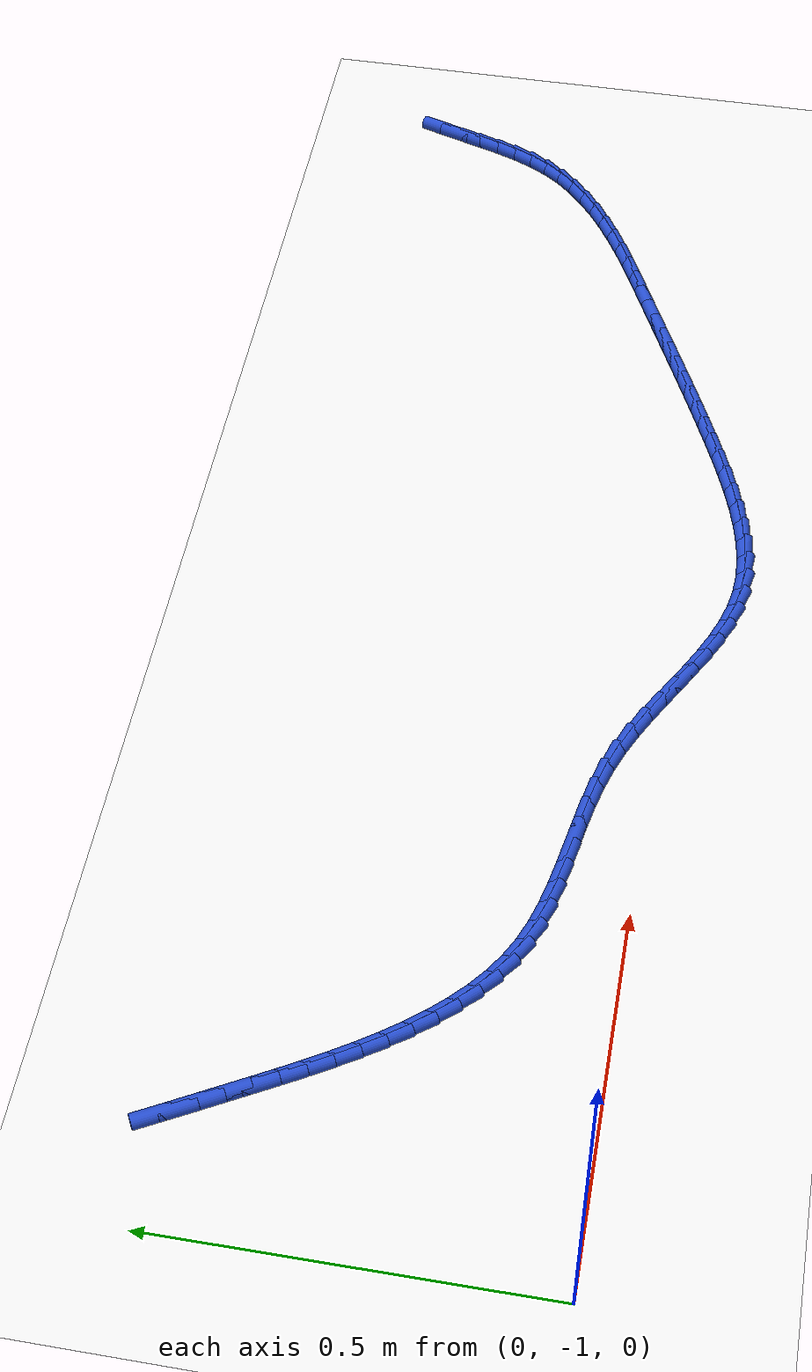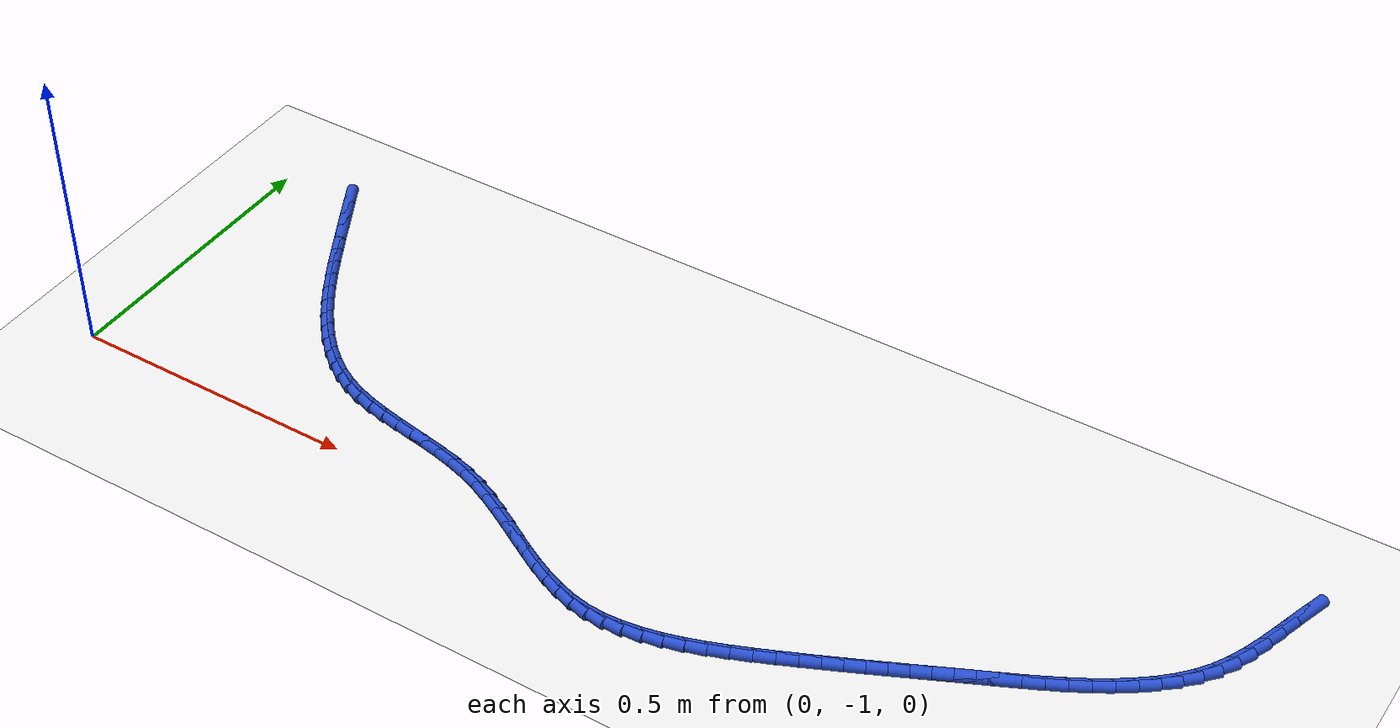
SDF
<sdf version="1.6">
 <world name="default">
  <model name="ground_plane">
   <static>1</static>
   <link name="link">
    <collision name="collision">
     <geometry><plane><normal>0 0 1</normal><size>100 100</size></plane></geometry>
     <surface><friction><ode><mu>100</mu><mu2>50</mu2></ode></friction></surface>
    </collision>
    <visual name="visual">
     <cast_shadows>0</cast_shadows>
     <geometry><plane><normal>0 0 1</normal><size>100 100</size></plane></geometry>
     <material>
      <script><uri>file://media/materials/scripts/gazebo.material</uri><name>Gazebo/WhiteGlow</name></script>
     </material>
    </visual>
   </link>
  </model>
  <model name="line">
   <link name="link_123">
    <pose>1.9035971837021775 -0.5317631812124626 0.01 0 1.57 1.2574699177674902</pose>
    <collision name="collision">
     <geometry><cylinder><radius>0.01</radius><length>0.08</length></cylinder></geometry>
    </collision>
    <visual name="visual">
     <material>
      <script><name>Gazebo/Blue</name><uri>file://media/materials/scripts/gazebo.material</uri></script>
     </material>
     <geometry><cylinder><radius>0.01</radius><length>0.08</length></cylinder></geometry>
    </visual>
   </link>
   <link name="link_124">
    <pose>1.8936572773726028 -0.5624419838178387 0.01 0 1.57 1.2650999844335613</pose>
    <collision name="collision">
     <geometry><cylinder><radius>0.01</radius><length>0.08</length></cylinder></geometry>
    </collision>
    <visual name="visual">
     <material>
      <script><name>Gazebo/Blue</name><uri>file://media/materials/scripts/gazebo.material</uri></script>
     </material>
     <geometry><cylinder><radius>0.01</radius><length>0.08</length></cylinder></geometry>
    </visual>
   </link>
   <link name="link_125">
    <pose>1.8840404693398973 -0.5929145780243941 0.01 0 1.57 1.249362293330336</pose>
    <collision name="collision">
     <geometry><cylinder><radius>0.01</radius><length>0.08</length></cylinder></geometry>
    </collision>
    <visual name="visual">
     <material>
      <script><name>Gazebo/Blue</name><uri>file://media/materials/scripts/gazebo.material</uri></script>
     </material>
     <geometry><cylinder><radius>0.01</radius><length>0.08</length></cylinder></geometry>
    </visual>
   </link>
   <link name="link_126">
    <pose>1.8740819137878313 -0.6228217955540367 0.01 0 1.57 1.2091053496623614</pose>
    <collision name="collision">
     <geometry><cylinder><radius>0.01</radius><length>0.08</length></cylinder></geometry>
    </collision>
    <visual name="visual">
     <material>
      <script><name>Gazebo/Blue</name><uri>file://media/materials/scripts/gazebo.material</uri></script>
     </material>
     <geometry><cylinder><radius>0.01</radius><length>0.08</length></cylinder></geometry>
    </visual>
   </link>
   <link name="link_127">
    <pose>1.8631167649001754 -0.6518044681286776 0.01 0 1.57 1.142788809898979</pose>
    <collision name="collision">
     <geometry><cylinder><radius>0.01</radius><length>0.08</length></cylinder></geometry>
    </collision>
    <visual name="visual">
     <material>
      <script><name>Gazebo/Blue</name><uri>file://media/materials/scripts/gazebo.material</uri></script>
     </material>
     <geometry><cylinder><radius>0.01</radius><length>0.08</length></cylinder></geometry>
    </visual>
   </link>
   <link name="link_128">
    <pose>1.8504801768606975 -0.6795034274702267 0.01 0 1.57 1.0492345519311874</pose>
    <collision name="collision">
     <geometry><cylinder><radius>0.01</radius><length>0.08</length></cylinder></geometry>
    </collision>
    <visual name="visual">
     <material>
      <script><name>Gazebo/Blue</name><uri>file://media/materials/scripts/gazebo.material</uri></script>
     </material>
     <geometry><cylinder><radius>0.01</radius><length>0.08</length></cylinder></geometry>
    </visual>
   </link>
   <link name="link_129">
    <pose>1.8355073611166977 -0.7055595357457469 0.01 0 1.57 0.9366217355337603</pose>
    <collision name="collision">
     <geometry><cylinder><radius>0.01</radius><length>0.08</length></cylinder></geometry>
    </collision>
    <visual name="visual">
     <material>
      <script><name>Gazebo/Blue</name><uri>file://media/materials/scripts/gazebo.material</uri></script>
     </material>
     <geometry><cylinder><radius>0.01</radius><length>0.08</length></cylinder></geometry>
    </visual>
   </link>
   <link name="link_130">
    <pose>1.817735785951005 -0.7297211884959385 0.01 0 1.57 0.8318644804979223</pose>
    <collision name="collision">
     <geometry><cylinder><radius>0.01</radius><length>0.08</length></cylinder></geometry>
    </collision>
    <visual name="visual">
     <material>
      <script><name>Gazebo/Blue</name><uri>file://media/materials/scripts/gazebo.material</uri></script>
     </material>
     <geometry><cylinder><radius>0.01</radius><length>0.08</length></cylinder></geometry>
    </visual>
   </link>
   <link name="link_131">
    <pose>1.79735889259243 -0.7520855407173171 0.01 0 1.57 0.741149634782639</pose>
    <collision name="collision">
     <geometry><cylinder><radius>0.01</radius><length>0.08</length></cylinder></geometry>
    </collision>
    <visual name="visual">
     <material>
      <script><name>Gazebo/Blue</name><uri>file://media/materials/scripts/gazebo.material</uri></script>
     </material>
     <geometry><cylinder><radius>0.01</radius><length>0.08</length></cylinder></geometry>
    </visual>
   </link>
   <link name="link_132">
    <pose>1.774702873210208 -0.7728203267588344 0.01 0 1.57 0.6643931690091314</pose>
    <collision name="collision">
     <geometry><cylinder><radius>0.01</radius><length>0.08</length></cylinder></geometry>
    </collision>
    <visual name="visual">
     <material>
      <script><name>Gazebo/Blue</name><uri>file://media/materials/scripts/gazebo.material</uri></script>
     </material>
     <geometry><cylinder><radius>0.01</radius><length>0.08</length></cylinder></geometry>
    </visual>
   </link>
   <link name="link_133">
    <pose>1.7500939199735759 -0.7920932809694408 0.01 0 1.57 0.6007798519271356</pose>
    <collision name="collision">
     <geometry><cylinder><radius>0.01</radius><length>0.08</length></cylinder></geometry>
    </collision>
    <visual name="visual">
     <material>
      <script><name>Gazebo/Blue</name><uri>file://media/materials/scripts/gazebo.material</uri></script>
     </material>
     <geometry><cylinder><radius>0.01</radius><length>0.08</length></cylinder></geometry>
    </visual>
   </link>
   <link name="link_134">
    <pose>1.7238582250517693 -0.8100721376980875 0.01 0 1.57 0.5492045805692501</pose>
    <collision name="collision">
     <geometry><cylinder><radius>0.01</radius><length>0.08</length></cylinder></geometry>
    </collision>
    <visual name="visual">
     <material>
      <script><name>Gazebo/Blue</name><uri>file://media/materials/scripts/gazebo.material</uri></script>
     </material>
     <geometry><cylinder><radius>0.01</radius><length>0.08</length></cylinder></geometry>
    </visual>
   </link>
   <link name="link_135">
    <pose>1.696321980614024 -0.8269246312937255 0.01 0 1.57 0.5085618356266397</pose>
    <collision name="collision">
     <geometry><cylinder><radius>0.01</radius><length>0.08</length></cylinder></geometry>
    </collision>
    <visual name="visual">
     <material>
      <script><name>Gazebo/Blue</name><uri>file://media/materials/scripts/gazebo.material</uri></script>
     </material>
     <geometry><cylinder><radius>0.01</radius><length>0.08</length></cylinder></geometry>
    </visual>
   </link>
   <link name="link_136">
    <pose>1.6678113788295754 -0.8428184961053059 0.01 0 1.57 0.47790933061135116</pose>
    <collision name="collision">
     <geometry><cylinder><radius>0.01</radius><length>0.08</length></cylinder></geometry>
    </collision>
    <visual name="visual">
     <material>
      <script><name>Gazebo/Blue</name><uri>file://media/materials/scripts/gazebo.material</uri></script>
     </material>
     <geometry><cylinder><radius>0.01</radius><length>0.08</length></cylinder></geometry>
    </visual>
   </link>
   <link name="link_137">
    <pose>1.6386526118676594 -0.8579214664817798 0.01 0 1.57 0.45655200049323724</pose>
    <collision name="collision">
     <geometry><cylinder><radius>0.01</radius><length>0.08</length></cylinder></geometry>
    </collision>
    <visual name="visual">
     <material>
      <script><name>Gazebo/Blue</name><uri>file://media/materials/scripts/gazebo.material</uri></script>
     </material>
     <geometry><cylinder><radius>0.01</radius><length>0.08</length></cylinder></geometry>
    </visual>
   </link>
   <link name="link_138">
    <pose>1.6091718718975119 -0.8724012767720983 0.01 0 1.57 0.44408581219840354</pose>
    <collision name="collision">
     <geometry><cylinder><radius>0.01</radius><length>0.08</length></cylinder></geometry>
    </collision>
    <visual name="visual">
     <material>
      <script><name>Gazebo/Blue</name><uri>file://media/materials/scripts/gazebo.material</uri></script>
     </material>
     <geometry><cylinder><radius>0.01</radius><length>0.08</length></cylinder></geometry>
    </visual>
   </link>
   <link name="link_139">
    <pose>1.5796953510883691 -0.8864256613252119 0.01 0 1.57 0.4403363741267102</pose>
    <collision name="collision">
     <geometry><cylinder><radius>0.01</radius><length>0.08</length></cylinder></geometry>
    </collision>
    <visual name="visual">
     <material>
      <script><name>Gazebo/Blue</name><uri>file://media/materials/scripts/gazebo.material</uri></script>
     </material>
     <geometry><cylinder><radius>0.01</radius><length>0.08</length></cylinder></geometry>
    </visual>
   </link>
   <link name="link_140">
    <pose>1.5505450826205665 -0.9001610205906814 0.01 0 1.57 0.44144242563334807</pose>
    <collision name="collision">
     <geometry><cylinder><radius>0.01</radius><length>0.08</length></cylinder></geometry>
    </collision>
    <visual name="visual">
     <material>
      <script><name>Gazebo/Blue</name><uri>file://media/materials/scripts/gazebo.material</uri></script>
     </material>
     <geometry><cylinder><radius>0.01</radius><length>0.08</length></cylinder></geometry>
    </visual>
   </link>
   <link name="link_141">
    <pose>1.5218611972191114 -0.9137154140173686 0.01 0 1.57 0.44191568588990127</pose>
    <collision name="collision">
     <geometry><cylinder><radius>0.01</radius><length>0.08</length></cylinder></geometry>
    </collision>
    <visual name="visual">
     <material>
      <script><name>Gazebo/Blue</name><uri>file://media/materials/scripts/gazebo.material</uri></script>
     </material>
     <geometry><cylinder><radius>0.01</radius><length>0.08</length></cylinder></geometry>
    </visual>
   </link>
   <link name="link_142">
    <pose>1.4935351144812237 -0.9271171327186635 0.01 0 1.57 0.44131330623203374</pose>
    <collision name="collision">
     <geometry><cylinder><radius>0.01</radius><length>0.08</length></cylinder></geometry>
    </collision>
    <visual name="visual">
     <material>
      <script><name>Gazebo/Blue</name><uri>file://media/materials/scripts/gazebo.material</uri></script>
     </material>
     <geometry><cylinder><radius>0.01</radius><length>0.08</length></cylinder></geometry>
    </visual>
   </link>
   <link name="link_143">
    <pose>1.465440322047246 -0.9403887165479923 0.01 0 1.57 0.439614917122317</pose>
    <collision name="collision">
     <geometry><cylinder><radius>0.01</radius><length>0.08</length></cylinder></geometry>
    </collision>
    <visual name="visual">
     <material>
      <script><name>Gazebo/Blue</name><uri>file://media/materials/scripts/gazebo.material</uri></script>
     </material>
     <geometry><cylinder><radius>0.01</radius><length>0.08</length></cylinder></geometry>
    </visual>
   </link>
   <link name="link_144">
    <pose>1.437450307557522 -0.9535527053587806 0.01 0 1.57 0.43682601974487045</pose>
    <collision name="collision">
     <geometry><cylinder><radius>0.01</radius><length>0.08</length></cylinder></geometry>
    </collision>
    <visual name="visual">
     <material>
      <script><name>Gazebo/Blue</name><uri>file://media/materials/scripts/gazebo.material</uri></script>
     </material>
     <geometry><cylinder><radius>0.01</radius><length>0.08</length></cylinder></geometry>
    </visual>
   </link>
   <link name="link_145">
    <pose>1.4094385586523945 -0.9666316390044549 0.01 0 1.57 0.4329784116088132</pose>
    <collision name="collision">
     <geometry><cylinder><radius>0.01</radius><length>0.08</length></cylinder></geometry>
    </collision>
    <visual name="visual">
     <material>
      <script><name>Gazebo/Blue</name><uri>file://media/materials/scripts/gazebo.material</uri></script>
     </material>
     <geometry><cylinder><radius>0.01</radius><length>0.08</length></cylinder></geometry>
    </visual>
   </link>
   <link name="link_146">
    <pose>1.3812785629722086 -0.9796480573384408 0.01 0 1.57 0.4281290827816842</pose>
    <collision name="collision">
     <geometry><cylinder><radius>0.01</radius><length>0.08</length></cylinder></geometry>
    </collision>
    <visual name="visual">
     <material>
      <script><name>Gazebo/Blue</name><uri>file://media/materials/scripts/gazebo.material</uri></script>
     </material>
     <geometry><cylinder><radius>0.01</radius><length>0.08</length></cylinder></geometry>
    </visual>
   </link>
   <link name="link_147">
    <pose>1.3528438081573069 -0.9926245002141648 0.01 0 1.57 0.4223576536189473</pose>
    <collision name="collision">
     <geometry><cylinder><radius>0.01</radius><length>0.08</length></cylinder></geometry>
    </collision>
    <visual name="visual">
     <material>
      <script><name>Gazebo/Blue</name><uri>file://media/materials/scripts/gazebo.material</uri></script>
     </material>
     <geometry><cylinder><radius>0.01</radius><length>0.08</length></cylinder></geometry>
    </visual>
   </link>
   <link name="link_148">
    <pose>1.3240077818480331 -1.0055835074850528 0.01 0 1.57 0.4157483393973781</pose>
    <collision name="collision">
     <geometry><cylinder><radius>0.01</radius><length>0.08</length></cylinder></geometry>
    </collision>
    <visual name="visual">
     <material>
      <script><name>Gazebo/Blue</name><uri>file://media/materials/scripts/gazebo.material</uri></script>
     </material>
     <geometry><cylinder><radius>0.01</radius><length>0.08</length></cylinder></geometry>
    </visual>
   </link>
   <link name="link_149">
    <pose>1.2946444045850745 -1.0185469283003201 0.01 0 1.57 0.4058955271044102</pose>
    <collision name="collision">
     <geometry><cylinder><radius>0.01</radius><length>0.08</length></cylinder></geometry>
    </collision>
    <visual name="visual">
     <material>
      <script><name>Gazebo/Blue</name><uri>file://media/materials/scripts/gazebo.material</uri></script>
     </material>
     <geometry><cylinder><radius>0.01</radius><length>0.08</length></cylinder></geometry>
    </visual>
   </link>
   <link name="link_150">
    <pose>1.2647045067808875 -1.0314139000279372 0.01 0 1.57 0.3874734914682873</pose>
    <collision name="collision">
     <geometry><cylinder><radius>0.01</radius><length>0.08</length></cylinder></geometry>
    </collision>
    <visual name="visual">
     <material>
      <script><name>Gazebo/Blue</name><uri>file://media/materials/scripts/gazebo.material</uri></script>
     </material>
     <geometry><cylinder><radius>0.01</radius><length>0.08</length></cylinder></geometry>
    </visual>
   </link>
   <link name="link_151">
    <pose>1.2343037328808113 -1.0438205947872865 0.01 0 1.57 0.3595368249839444</pose>
    <collision name="collision">
     <geometry><cylinder><radius>0.01</radius><length>0.08</length></cylinder></geometry>
    </collision>
    <visual name="visual">
     <material>
      <script><name>Gazebo/Blue</name><uri>file://media/materials/scripts/gazebo.material</uri></script>
     </material>
     <geometry><cylinder><radius>0.01</radius><length>0.08</length></cylinder></geometry>
    </visual>
   </link>
   <link name="link_152">
    <pose>1.2035790131520843 -1.0553692225930114 0.01 0 1.57 0.321426150387255</pose>
    <collision name="collision">
     <geometry><cylinder><radius>0.01</radius><length>0.08</length></cylinder></geometry>
    </collision>
    <visual name="visual">
     <material>
      <script><name>Gazebo/Blue</name><uri>file://media/materials/scripts/gazebo.material</uri></script>
     </material>
     <geometry><cylinder><radius>0.01</radius><length>0.08</length></cylinder></geometry>
    </visual>
   </link>
   <link name="link_153">
    <pose>1.1726672778619427 -1.0656619934597569 0.01 0 1.57 0.2721044157323733</pose>
    <collision name="collision">
     <geometry><cylinder><radius>0.01</radius><length>0.08</length></cylinder></geometry>
    </collision>
    <visual name="visual">
     <material>
      <script><name>Gazebo/Blue</name><uri>file://media/materials/scripts/gazebo.material</uri></script>
     </material>
     <geometry><cylinder><radius>0.01</radius><length>0.08</length></cylinder></geometry>
    </visual>
   </link>
   <link name="link_154">
    <pose>1.141705457277623 -1.0743011174021673 0.01 0 1.57 0.21021435735303312</pose>
    <collision name="collision">
     <geometry><cylinder><radius>0.01</radius><length>0.08</length></cylinder></geometry>
    </collision>
    <visual name="visual">
     <material>
      <script><name>Gazebo/Blue</name><uri>file://media/materials/scripts/gazebo.material</uri></script>
     </material>
     <geometry><cylinder><radius>0.01</radius><length>0.08</length></cylinder></geometry>
    </visual>
   </link>
   <link name="link_155">
    <pose>1.110830481666363 -1.0808888044348872 0.01 0 1.57 0.13420628929436992</pose>
    <collision name="collision">
     <geometry><cylinder><radius>0.01</radius><length>0.08</length></cylinder></geometry>
    </collision>
    <visual name="visual">
     <material>
      <script><name>Gazebo/Blue</name><uri>file://media/materials/scripts/gazebo.material</uri></script>
     </material>
     <geometry><cylinder><radius>0.01</radius><length>0.08</length></cylinder></geometry>
    </visual>
   </link>
   <link name="link_156">
    <pose>1.0801792812953992 -1.0850272645725616 0.01 0 1.57 0.04260945889656731</pose>
    <collision name="collision">
     <geometry><cylinder><radius>0.01</radius><length>0.08</length></cylinder></geometry>
    </collision>
    <visual name="visual">
     <material>
      <script><name>Gazebo/Blue</name><uri>file://media/materials/scripts/gazebo.material</uri></script>
     </material>
     <geometry><cylinder><radius>0.01</radius><length>0.08</length></cylinder></geometry>
    </visual>
   </link>
   <link name="link_157">
    <pose>1.049888786431968 -1.0863187078298346 0.01 0 1.57 -0.06547111826428142</pose>
    <collision name="collision">
     <geometry><cylinder><radius>0.01</radius><length>0.08</length></cylinder></geometry>
    </collision>
    <visual name="visual">
     <material>
      <script><name>Gazebo/Blue</name><uri>file://media/materials/scripts/gazebo.material</uri></script>
     </material>
     <geometry><cylinder><radius>0.01</radius><length>0.08</length></cylinder></geometry>
    </visual>
   </link>
   <link name="link_158">
    <pose>1.020095927343308 -1.084365344221351 0.01 0 1.57 -0.1856577948138502</pose>
    <collision name="collision">
     <geometry><cylinder><radius>0.01</radius><length>0.08</length></cylinder></geometry>
    </collision>
    <visual name="visual">
     <material>
      <script><name>Gazebo/Blue</name><uri>file://media/materials/scripts/gazebo.material</uri></script>
     </material>
     <geometry><cylinder><radius>0.01</radius><length>0.08</length></cylinder></geometry>
    </visual>
   </link>
   <link name="link_159">
    <pose>0.9909056694233843 -1.078882807898008 0.01 0 1.57 -0.2934075538585413</pose>
    <collision name="collision">
     <geometry><cylinder><radius>0.01</radius><length>0.08</length></cylinder></geometry>
    </collision>
    <visual name="visual">
     <material>
      <script><name>Gazebo/Blue</name><uri>file://media/materials/scripts/gazebo.material</uri></script>
     </material>
     <geometry><cylinder><radius>0.01</radius><length>0.08</length></cylinder></geometry>
    </visual>
   </link>
   <link name="link_160">
    <pose>0.962243608226135 -1.0702232088385004 0.01 0 1.57 -0.37911435638638535</pose>
    <collision name="collision">
     <geometry><cylinder><radius>0.01</radius><length>0.08</length></cylinder></geometry>
    </collision>
    <visual name="visual">
     <material>
      <script><name>Gazebo/Blue</name><uri>file://media/materials/scripts/gazebo.material</uri></script>
     </material>
     <geometry><cylinder><radius>0.01</radius><length>0.08</length></cylinder></geometry>
    </visual>
   </link>
   <link name="link_161">
    <pose>0.9339728154965276 -1.0589605164660314 0.01 0 1.57 -0.44297478747484353</pose>
    <collision name="collision">
     <geometry><cylinder><radius>0.01</radius><length>0.08</length></cylinder></geometry>
    </collision>
    <visual name="visual">
     <material>
      <script><name>Gazebo/Blue</name><uri>file://media/materials/scripts/gazebo.material</uri></script>
     </material>
     <geometry><cylinder><radius>0.01</radius><length>0.08</length></cylinder></geometry>
    </visual>
   </link>
   <link name="link_162">
    <pose>0.9059562987892312 -1.0456689279766171 0.01 0 1.57 -0.48623002297974066</pose>
    <collision name="collision">
     <geometry><cylinder><radius>0.01</radius><length>0.08</length></cylinder></geometry>
    </collision>
    <visual name="visual">
     <material>
      <script><name>Gazebo/Blue</name><uri>file://media/materials/scripts/gazebo.material</uri></script>
     </material>
     <geometry><cylinder><radius>0.01</radius><length>0.08</length></cylinder></geometry>
    </visual>
   </link>
   <link name="link_163">
    <pose>0.8780570656589163 -1.0309226405662744 0.01 0 1.57 -0.5102751123221384</pose>
    <collision name="collision">
     <geometry><cylinder><radius>0.01</radius><length>0.08</length></cylinder></geometry>
    </collision>
    <visual name="visual">
     <material>
      <script><name>Gazebo/Blue</name><uri>file://media/materials/scripts/gazebo.material</uri></script>
     </material>
     <geometry><cylinder><radius>0.01</radius><length>0.08</length></cylinder></geometry>
    </visual>
   </link>
   <link name="link_164">
    <pose>0.850138123660252 -1.0152958514310182 0.01 0 1.57 -0.5161840386938299</pose>
    <collision name="collision">
     <geometry><cylinder><radius>0.01</radius><length>0.08</length></cylinder></geometry>
    </collision>
    <visual name="visual">
     <material>
      <script><name>Gazebo/Blue</name><uri>file://media/materials/scripts/gazebo.material</uri></script>
     </material>
     <geometry><cylinder><radius>0.01</radius><length>0.08</length></cylinder></geometry>
    </visual>
   </link>
   <link name="link_165">
    <pose>0.8220624803479096 -0.9993627577668664 0.01 0 1.57 -0.5045213295678022</pose>
    <collision name="collision">
     <geometry><cylinder><radius>0.01</radius><length>0.08</length></cylinder></geometry>
    </collision>
    <visual name="visual">
     <material>
      <script><name>Gazebo/Blue</name><uri>file://media/materials/scripts/gazebo.material</uri></script>
     </material>
     <geometry><cylinder><radius>0.01</radius><length>0.08</length></cylinder></geometry>
    </visual>
   </link>
   <link name="link_166">
    <pose>0.7936931432765582 -0.983697556769835 0.01 0 1.57 -0.47533117148482873</pose>
    <collision name="collision">
     <geometry><cylinder><radius>0.01</radius><length>0.08</length></cylinder></geometry>
    </collision>
    <visual name="visual">
     <material>
      <script><name>Gazebo/Blue</name><uri>file://media/materials/scripts/gazebo.material</uri></script>
     </material>
     <geometry><cylinder><radius>0.01</radius><length>0.08</length></cylinder></geometry>
    </visual>
   </link>
   <link name="link_167">
    <pose>0.764893120000868 -0.9688744456359402 0.01 0 1.57 -0.4282593545931227</pose>
    <collision name="collision">
     <geometry><cylinder><radius>0.01</radius><length>0.08</length></cylinder></geometry>
    </collision>
    <visual name="visual">
     <material>
      <script><name>Gazebo/Blue</name><uri>file://media/materials/scripts/gazebo.material</uri></script>
     </material>
     <geometry><cylinder><radius>0.01</radius><length>0.08</length></cylinder></geometry>
    </visual>
   </link>
   <link name="link_168">
    <pose>0.7355254180755082 -0.9554676215611975 0.01 0 1.57 -0.36287013046322664</pose>
    <collision name="collision">
     <geometry><cylinder><radius>0.01</radius><length>0.08</length></cylinder></geometry>
    </collision>
    <visual name="visual">
     <material>
      <script><name>Gazebo/Blue</name><uri>file://media/materials/scripts/gazebo.material</uri></script>
     </material>
     <geometry><cylinder><radius>0.01</radius><length>0.08</length></cylinder></geometry>
    </visual>
   </link>
   <link name="link_169">
    <pose>0.7054535394240502 -0.9440498352733895 0.01 0 1.57 -0.28956738605996624</pose>
    <collision name="collision">
     <geometry><cylinder><radius>0.01</radius><length>0.08</length></cylinder></geometry>
    </collision>
    <visual name="visual">
     <material>
      <script><name>Gazebo/Blue</name><uri>file://media/materials/scripts/gazebo.material</uri></script>
     </material>
     <geometry><cylinder><radius>0.01</radius><length>0.08</length></cylinder></geometry>
    </visual>
   </link>
   <link name="link_170">
    <pose>0.6746508370547021 -0.9348724254857722 0.01 0 1.57 -0.23237742116101903</pose>
    <collision name="collision">
     <geometry><cylinder><radius>0.01</radius><length>0.08</length></cylinder></geometry>
    </collision>
    <visual name="visual">
     <material>
      <script><name>Gazebo/Blue</name><uri>file://media/materials/scripts/gazebo.material</uri></script>
     </material>
     <geometry><cylinder><radius>0.01</radius><length>0.08</length></cylinder></geometry>
    </visual>
   </link>
   <link name="link_171">
    <pose>0.6433382813244147 -0.9274622301827052 0.01 0 1.57 -0.19440324177466484</pose>
    <collision name="collision">
     <geometry><cylinder><radius>0.01</radius><length>0.08</length></cylinder></geometry>
    </collision>
    <visual name="visual">
     <material>
      <script><name>Gazebo/Blue</name><uri>file://media/materials/scripts/gazebo.material</uri></script>
     </material>
     <geometry><cylinder><radius>0.01</radius><length>0.08</length></cylinder></geometry>
    </visual>
   </link>
   <link name="link_172">
    <pose>0.6117707417058607 -0.921246902319001 0.01 0 1.57 -0.1753493683164891</pose>
    <collision name="collision">
     <geometry><cylinder><radius>0.01</radius><length>0.08</length></cylinder></geometry>
    </collision>
    <visual name="visual">
     <material>
      <script><name>Gazebo/Blue</name><uri>file://media/materials/scripts/gazebo.material</uri></script>
     </material>
     <geometry><cylinder><radius>0.01</radius><length>0.08</length></cylinder></geometry>
    </visual>
   </link>
   <link name="link_173">
    <pose>0.5802030876717136 -0.915654094849472 0.01 0 1.57 -0.17519334767232753</pose>
    <collision name="collision">
     <geometry><cylinder><radius>0.01</radius><length>0.08</length></cylinder></geometry>
    </collision>
    <visual name="visual">
     <material>
      <script><name>Gazebo/Blue</name><uri>file://media/materials/scripts/gazebo.material</uri></script>
     </material>
     <geometry><cylinder><radius>0.01</radius><length>0.08</length></cylinder></geometry>
    </visual>
   </link>
   <link name="link_174">
    <pose>0.5488901886946468 -0.9101114607289307 0.01 0 1.57 -0.19440186670131637</pose>
    <collision name="collision">
     <geometry><cylinder><radius>0.01</radius><length>0.08</length></cylinder></geometry>
    </collision>
    <visual name="visual">
     <material>
      <script><name>Gazebo/Blue</name><uri>file://media/materials/scripts/gazebo.material</uri></script>
     </material>
     <geometry><cylinder><radius>0.01</radius><length>0.08</length></cylinder></geometry>
    </visual>
   </link>
   <link name="link_175">
    <pose>0.5180869142473337 -0.9040466529121897 0.01 0 1.57 -0.23397119613763054</pose>
    <collision name="collision">
     <geometry><cylinder><radius>0.01</radius><length>0.08</length></cylinder></geometry>
    </collision>
    <visual name="visual">
     <material>
      <script><name>Gazebo/Blue</name><uri>file://media/materials/scripts/gazebo.material</uri></script>
     </material>
     <geometry><cylinder><radius>0.01</radius><length>0.08</length></cylinder></geometry>
    </visual>
   </link>
   <link name="link_176">
    <pose>0.48804813380244716 -0.8968873243540613 0.01 0 1.57 -0.2952579005320988</pose>
    <collision name="collision">
     <geometry><cylinder><radius>0.01</radius><length>0.08</length></cylinder></geometry>
    </collision>
    <visual name="visual">
     <material>
      <script><name>Gazebo/Blue</name><uri>file://media/materials/scripts/gazebo.material</uri></script>
     </material>
     <geometry><cylinder><radius>0.01</radius><length>0.08</length></cylinder></geometry>
    </visual>
   </link>
   <link name="link_177">
    <pose>0.45902871683266194 -0.8880611280093582 0.01 0 1.57 -0.3794911128276032</pose>
    <collision name="collision">
     <geometry><cylinder><radius>0.01</radius><length>0.08</length></cylinder></geometry>
    </collision>
    <visual name="visual">
     <material>
      <script><name>Gazebo/Blue</name><uri>file://media/materials/scripts/gazebo.material</uri></script>
     </material>
     <geometry><cylinder><radius>0.01</radius><length>0.08</length></cylinder></geometry>
    </visual>
   </link>
   <link name="link_178">
    <pose>0.4312835328106509 -0.8769957168328933 0.01 0 1.57 -0.48384582987078306</pose>
    <collision name="collision">
     <geometry><cylinder><radius>0.01</radius><length>0.08</length></cylinder></geometry>
    </collision>
    <visual name="visual">
     <material>
      <script><name>Gazebo/Blue</name><uri>file://media/materials/scripts/gazebo.material</uri></script>
     </material>
     <geometry><cylinder><radius>0.01</radius><length>0.08</length></cylinder></geometry>
    </visual>
   </link>
   <link name="link_179">
    <pose>0.4050316587937899 -0.8632001243947702 0.01 0 1.57 -0.5870327023940263</pose>
    <collision name="collision">
     <geometry><cylinder><radius>0.01</radius><length>0.08</length></cylinder></geometry>
    </collision>
    <visual name="visual">
     <material>
      <script><name>Gazebo/Blue</name><uri>file://media/materials/scripts/gazebo.material</uri></script>
     </material>
     <geometry><cylinder><radius>0.01</radius><length>0.08</length></cylinder></geometry>
    </visual>
   </link>
   <link name="link_180">
    <pose>0.3802569044706986 -0.8467183077417054 0.01 0 1.57 -0.6794388865662031</pose>
    <collision name="collision">
     <geometry><cylinder><radius>0.01</radius><length>0.08</length></cylinder></geometry>
    </collision>
    <visual name="visual">
     <material>
      <script><name>Gazebo/Blue</name><uri>file://media/materials/scripts/gazebo.material</uri></script>
     </material>
     <geometry><cylinder><radius>0.01</radius><length>0.08</length></cylinder></geometry>
    </visual>
   </link>
   <link name="link_181">
    <pose>0.35684808410016916 -0.8278102134384449 0.01 0 1.57 -0.7604077782104504</pose>
    <collision name="collision">
     <geometry><cylinder><radius>0.01</radius><length>0.08</length></cylinder></geometry>
    </collision>
    <visual name="visual">
     <material>
      <script><name>Gazebo/Blue</name><uri>file://media/materials/scripts/gazebo.material</uri></script>
     </material>
     <geometry><cylinder><radius>0.01</radius><length>0.08</length></cylinder></geometry>
    </visual>
   </link>
   <link name="link_182">
    <pose>0.3346937472385163 -0.8067363898993248 0.01 0 1.57 -0.8300986870725957</pose>
    <collision name="collision">
     <geometry><cylinder><radius>0.01</radius><length>0.08</length></cylinder></geometry>
    </collision>
    <visual name="visual">
     <material>
      <script><name>Gazebo/Blue</name><uri>file://media/materials/scripts/gazebo.material</uri></script>
     </material>
     <geometry><cylinder><radius>0.01</radius><length>0.08</length></cylinder></geometry>
    </visual>
   </link>
   <link name="link_183">
    <pose>0.31368244344205437 -0.783757385538681 0.01 0 1.57 -0.8891402117264571</pose>
    <collision name="collision">
     <geometry><cylinder><radius>0.01</radius><length>0.08</length></cylinder></geometry>
    </collision>
    <visual name="visual">
     <material>
      <script><name>Gazebo/Blue</name><uri>file://media/materials/scripts/gazebo.material</uri></script>
     </material>
     <geometry><cylinder><radius>0.01</radius><length>0.08</length></cylinder></geometry>
    </visual>
   </link>
   <link name="link_184">
    <pose>0.293702722267099 -0.7591337487708505 0.01 0 1.57 -0.9383661022481885</pose>
    <collision name="collision">
     <geometry><cylinder><radius>0.01</radius><length>0.08</length></cylinder></geometry>
    </collision>
    <visual name="visual">
     <material>
      <script><name>Gazebo/Blue</name><uri>file://media/materials/scripts/gazebo.material</uri></script>
     </material>
     <geometry><cylinder><radius>0.01</radius><length>0.08</length></cylinder></geometry>
    </visual>
   </link>
   <link name="link_185">
    <pose>0.2746431332699642 -0.733126028010169 0.01 0 1.57 -0.9786357533655115</pose>
    <collision name="collision">
     <geometry><cylinder><radius>0.01</radius><length>0.08</length></cylinder></geometry>
    </collision>
    <visual name="visual">
     <material>
      <script><name>Gazebo/Blue</name><uri>file://media/materials/scripts/gazebo.material</uri></script>
     </material>
     <geometry><cylinder><radius>0.01</radius><length>0.08</length></cylinder></geometry>
    </visual>
   </link>
   <link name="link_186">
    <pose>0.2563922260069649 -0.7059947716709726 0.01 0 1.57 -1.0107271458287905</pose>
    <collision name="collision">
     <geometry><cylinder><radius>0.01</radius><length>0.08</length></cylinder></geometry>
    </collision>
    <visual name="visual">
     <material>
      <script><name>Gazebo/Blue</name><uri>file://media/materials/scripts/gazebo.material</uri></script>
     </material>
     <geometry><cylinder><radius>0.01</radius><length>0.08</length></cylinder></geometry>
    </visual>
   </link>
   <link name="link_187">
    <pose>0.23883855003441576 -0.6780005281675977 0.01 0 1.57 -1.035279491689547</pose>
    <collision name="collision">
     <geometry><cylinder><radius>0.01</radius><length>0.08</length></cylinder></geometry>
    </collision>
    <visual name="visual">
     <material>
      <script><name>Gazebo/Blue</name><uri>file://media/materials/scripts/gazebo.material</uri></script>
     </material>
     <geometry><cylinder><radius>0.01</radius><length>0.08</length></cylinder></geometry>
    </visual>
   </link>
   <link name="link_188">
    <pose>0.22187065490863153 -0.6494038459143806 0.01 0 1.57 -1.0527648785783639</pose>
    <collision name="collision">
     <geometry><cylinder><radius>0.01</radius><length>0.08</length></cylinder></geometry>
    </collision>
    <visual name="visual">
     <material>
      <script><name>Gazebo/Blue</name><uri>file://media/materials/scripts/gazebo.material</uri></script>
     </material>
     <geometry><cylinder><radius>0.01</radius><length>0.08</length></cylinder></geometry>
    </visual>
   </link>
   <link name="link_189">
    <pose>0.20537709018592656 -0.6204652733256568 0.01 0 1.57 -1.063473764466438</pose>
    <collision name="collision">
     <geometry><cylinder><radius>0.01</radius><length>0.08</length></cylinder></geometry>
    </collision>
    <visual name="visual">
     <material>
      <script><name>Gazebo/Blue</name><uri>file://media/materials/scripts/gazebo.material</uri></script>
     </material>
     <geometry><cylinder><radius>0.01</radius><length>0.08</length></cylinder></geometry>
    </visual>
   </link>
   <link name="link_190">
    <pose>0.18924640542261628 -0.5914453588157637 0.01 0 1.57 -1.0675042781160609</pose>
    <collision name="collision">
     <geometry><cylinder><radius>0.01</radius><length>0.08</length></cylinder></geometry>
    </collision>
    <visual name="visual">
     <material>
      <script><name>Gazebo/Blue</name><uri>file://media/materials/scripts/gazebo.material</uri></script>
     </material>
     <geometry><cylinder><radius>0.01</radius><length>0.08</length></cylinder></geometry>
    </visual>
   </link>
   <link name="link_191">
    <pose>0.1733671507244568 -0.5626046498464083 0.01 0 1.57 -1.0667572675477266</pose>
    <collision name="collision">
     <geometry><cylinder><radius>0.01</radius><length>0.08</length></cylinder></geometry>
    </collision>
    <visual name="visual">
     <material>
      <script><name>Gazebo/Blue</name><uri>file://media/materials/scripts/gazebo.material</uri></script>
     </material>
     <geometry><cylinder><radius>0.01</radius><length>0.08</length></cylinder></geometry>
    </visual>
   </link>
   <link name="link_192">
    <pose>0.1576659493706339 -0.5341376821794177 0.01 0 1.57 -1.0686034063332188</pose>
    <collision name="collision">
     <geometry><cylinder><radius>0.01</radius><length>0.08</length></cylinder></geometry>
    </collision>
    <visual name="visual">
     <material>
      <script><name>Gazebo/Blue</name><uri>file://media/materials/scripts/gazebo.material</uri></script>
     </material>
     <geometry><cylinder><radius>0.01</radius><length>0.08</length></cylinder></geometry>
    </visual>
   </link>
   <link name="link_193">
    <pose>0.14221074053076044 -0.5059939764831294 0.01 0 1.57 -1.0749007717554315</pose>
    <collision name="collision">
     <geometry><cylinder><radius>0.01</radius><length>0.08</length></cylinder></geometry>
    </collision>
    <visual name="visual">
     <material>
      <script><name>Gazebo/Blue</name><uri>file://media/materials/scripts/gazebo.material</uri></script>
     </material>
     <geometry><cylinder><radius>0.01</radius><length>0.08</length></cylinder></geometry>
    </visual>
   </link>
  </model>
 </world>
</sdf>
